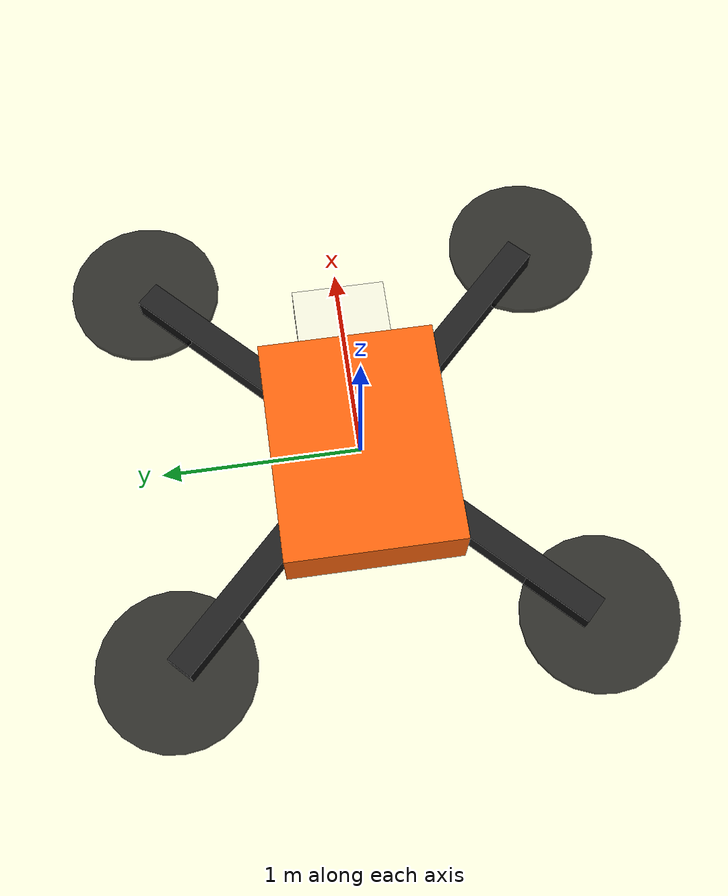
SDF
<?xml version="1.0"?>
<sdf version="1.8">
  <model name="fleet_uav_orange">
    <static>true</static>
    <link name="base_link">
      <visual name="body">
        <pose>0 0 0 0 0 0</pose>
        <geometry>
          <box>
            <size>1.15 0.9 0.3</size>
          </box>
        </geometry>
        <material>
          <ambient>0.45 0.16 0.02 1</ambient>
          <diffuse>0.95 0.38 0.05 1</diffuse>
        </material>
      </visual>
      <visual name="front_nose">
        <pose>0.72 0 0 0 0 0</pose>
        <geometry>
          <box>
            <size>0.32 0.48 0.22</size>
          </box>
        </geometry>
        <material>
          <ambient>0.78 0.78 0.72 1</ambient>
          <diffuse>0.92 0.92 0.84 1</diffuse>
        </material>
      </visual>
      <visual name="arm_x">
        <pose>0 0 0.03 0 0 0.785</pose>
        <geometry>
          <box>
            <size>2.8 0.14 0.12</size>
          </box>
        </geometry>
        <material>
          <ambient>0.08 0.08 0.08 1</ambient>
          <diffuse>0.12 0.12 0.12 1</diffuse>
        </material>
      </visual>
      <visual name="arm_y">
        <pose>0 0 0.03 0 0 -0.785</pose>
        <geometry>
          <box>
            <size>2.8 0.14 0.12</size>
          </box>
        </geometry>
        <material>
          <ambient>0.08 0.08 0.08 1</ambient>
          <diffuse>0.12 0.12 0.12 1</diffuse>
        </material>
      </visual>
      <visual name="rotor_front_left">
        <pose>1.0 1.0 0.07 0 0 0</pose>
        <geometry>
          <cylinder>
            <radius>0.38</radius>
            <length>0.035</length>
          </cylinder>
        </geometry>
        <material>
          <ambient>0.02 0.02 0.02 0.8</ambient>
          <diffuse>0.03 0.03 0.03 0.8</diffuse>
        </material>
      </visual>
      <visual name="rotor_front_right">
        <pose>1.0 -1.0 0.07 0 0 0</pose>
        <geometry>
          <cylinder>
            <radius>0.38</radius>
            <length>0.035</length>
          </cylinder>
        </geometry>
        <material>
          <ambient>0.02 0.02 0.02 0.8</ambient>
          <diffuse>0.03 0.03 0.03 0.8</diffuse>
        </material>
      </visual>
      <visual name="rotor_back_left">
        <pose>-1.0 1.0 0.07 0 0 0</pose>
        <geometry>
          <cylinder>
            <radius>0.38</radius>
            <length>0.035</length>
          </cylinder>
        </geometry>
        <material>
          <ambient>0.02 0.02 0.02 0.8</ambient>
          <diffuse>0.03 0.03 0.03 0.8</diffuse>
        </material>
      </visual>
      <visual name="rotor_back_right">
        <pose>-1.0 -1.0 0.07 0 0 0</pose>
        <geometry>
          <cylinder>
            <radius>0.38</radius>
            <length>0.035</length>
          </cylinder>
        </geometry>
        <material>
          <ambient>0.02 0.02 0.02 0.8</ambient>
          <diffuse>0.03 0.03 0.03 0.8</diffuse>
        </material>
      </visual>
      <visual name="camera">
        <pose>0.35 0 -0.24 0 0 0</pose>
        <geometry>
          <box>
            <size>0.24 0.24 0.22</size>
          </box>
        </geometry>
        <material>
          <ambient>0.0 0.0 0.0 1</ambient>
          <diffuse>0.02 0.02 0.02 1</diffuse>
        </material>
      </visual>
    </link>
  </model>
</sdf>
